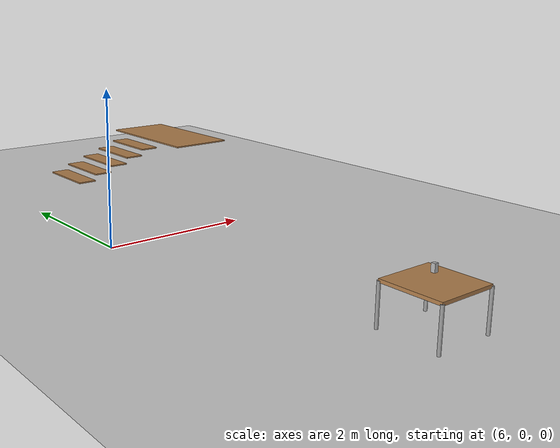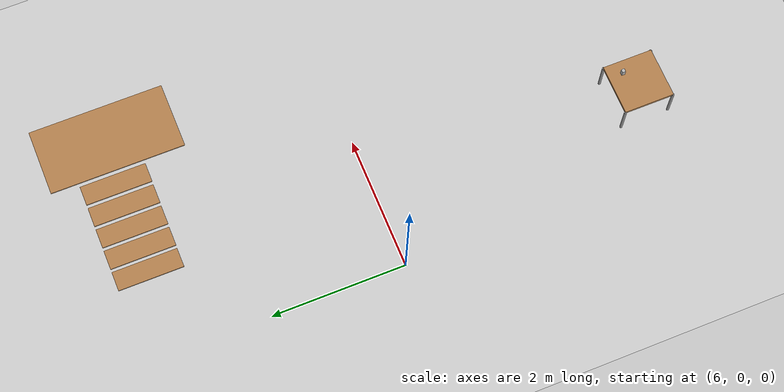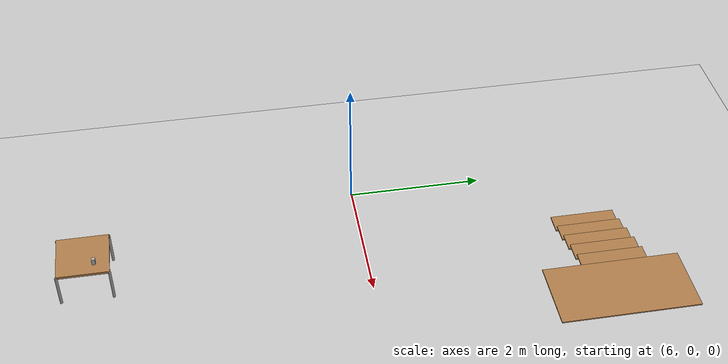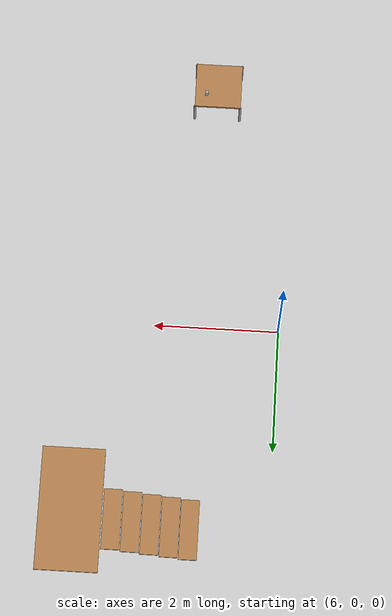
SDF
<sdf version="1.6">
 <world name="default">
  <model name="ground_plane">
   <static>1</static>
   <link name="link">
    <collision name="collision">
     <geometry><plane><normal>0 0 1</normal><size>100 100</size></plane></geometry>
     <surface>
      <contact><collide_bitmask>65535</collide_bitmask></contact>
      <friction><ode><mu>100</mu><mu2>50</mu2></ode></friction>
     </surface>
    </collision>
    <visual name="visual">
     <cast_shadows>0</cast_shadows>
     <geometry><plane><normal>0 0 1</normal><size>100 100</size></plane></geometry>
     <material>
      <script><uri>file://media/materials/scripts/gazebo.material</uri><name>Gazebo/Grey</name></script>
     </material>
    </visual>
   </link>
  </model>
  <model name="bauzil_stairs_0">
   <static>1</static>
   <link name="step_1">
    <collision name="step_1">
     <pose>2.01 -0.059996 0.59 0 -0 0</pose>
     <geometry><box><size>0.982111 1.96422 0.02</size></box></geometry>
    </collision>
    <visual name="step_1">
     <pose>2.01 -0.059996 0.59 0 -0 0</pose>
     <geometry><box><size>0.982111 1.96422 0.02</size></box></geometry>
     <material>
      <script><uri>file://media/materials/scripts/gazebo.material</uri><name>Gazebo/Wood</name></script>
     </material>
    </visual>
   </link>
   <link name="step_2">
    <collision name="step_2">
     <pose>1.36 0.040004 0.49 0 -0 0</pose>
     <geometry><box><size>0.288506 0.961687 0.02</size></box></geometry>
    </collision>
    <visual name="step_2">
     <pose>1.36 0.040004 0.49 0 -0 0</pose>
     <geometry><box><size>0.288506 0.961687 0.02</size></box></geometry>
     <material>
      <script><uri>file://media/materials/scripts/gazebo.material</uri><name>Gazebo/Wood</name></script>
     </material>
    </visual>
   </link>
   <link name="step_3">
    <collision name="step_3">
     <pose>1.06 0.040004 0.39 0 -0 0</pose>
     <geometry><box><size>0.288506 0.961687 0.02</size></box></geometry>
    </collision>
    <visual name="step_3">
     <pose>1.06 0.040004 0.39 0 -0 0</pose>
     <geometry><box><size>0.288506 0.961687 0.02</size></box></geometry>
     <material>
      <script><uri>file://media/materials/scripts/gazebo.material</uri><name>Gazebo/Wood</name></script>
     </material>
    </visual>
   </link>
   <link name="step_4">
    <collision name="step_4">
     <pose>0.76 0.040004 0.29 0 -0 0</pose>
     <geometry><box><size>0.288506 0.961687 0.02</size></box></geometry>
    </collision>
    <visual name="step_4">
     <pose>0.76 0.040004 0.29 0 -0 0</pose>
     <geometry><box><size>0.288506 0.961687 0.02</size></box></geometry>
     <material>
      <script><uri>file://media/materials/scripts/gazebo.material</uri><name>Gazebo/Wood</name></script>
     </material>
    </visual>
   </link>
   <link name="step_5">
    <collision name="step_5">
     <pose>0.46 0.040004 0.19 0 -0 0</pose>
     <geometry><box><size>0.288506 0.961687 0.02</size></box></geometry>
    </collision>
    <visual name="step_5">
     <pose>0.46 0.040004 0.19 0 -0 0</pose>
     <geometry><box><size>0.288506 0.961687 0.02</size></box></geometry>
     <material>
      <script><uri>file://media/materials/scripts/gazebo.material</uri><name>Gazebo/Wood</name></script>
     </material>
    </visual>
   </link>
   <link name="step_6">
    <collision name="step_6">
     <pose>0.16 0.040004 0.09 0 -0 0</pose>
     <geometry><box><size>0.288506 0.961687 0.02</size></box></geometry>
    </collision>
    <visual name="step_6">
     <pose>0.16 0.040004 0.09 0 -0 0</pose>
     <geometry><box><size>0.288506 0.961687 0.02</size></box></geometry>
     <material>
      <script><uri>file://media/materials/scripts/gazebo.material</uri><name>Gazebo/Wood</name></script>
     </material>
    </visual>
   </link>
   <pose>7.08932 3.31501 0 0 -0 0</pose>
  </model>
  <model name="table_clone">
   <static>1</static>
   <link name="link">
    <collision name="surface">
     <pose>0 0 0.5 0 -0 0</pose>
     <geometry><box><size>0.75 0.75 0.04</size></box></geometry>
    </collision>
    <visual name="visual1">
     <pose>0 0 0.5 0 -0 0</pose>
     <geometry><box><size>0.75 0.75 0.04</size></box></geometry>
     <material>
      <script><uri>file://media/materials/scripts/gazebo.material</uri><name>Gazebo/Wood</name></script>
     </material>
    </visual>
    <collision name="front_left_leg">
     <pose>0.37 0.37 0.25 0 -0 0</pose>
     <geometry><cylinder><radius>0.02</radius><length>0.5</length></cylinder></geometry>
    </collision>
    <visual name="front_left_leg">
     <pose>0.37 0.37 0.25 0 -0 0</pose>
     <geometry><cylinder><radius>0.02</radius><length>0.5</length></cylinder></geometry>
     <material>
      <script><uri>file://media/materials/scripts/gazebo.material</uri><name>Gazebo/Grey</name></script>
     </material>
    </visual>
    <collision name="front_right_leg">
     <pose>0.37 -0.37 0.25 0 -0 0</pose>
     <geometry><cylinder><radius>0.02</radius><length>0.5</length></cylinder></geometry>
    </collision>
    <visual name="front_right_leg">
     <pose>0.37 -0.37 0.25 0 -0 0</pose>
     <geometry><cylinder><radius>0.02</radius><length>0.5</length></cylinder></geometry>
     <material>
      <script><uri>file://media/materials/scripts/gazebo.material</uri><name>Gazebo/Grey</name></script>
     </material>
    </visual>
    <collision name="back_right_leg">
     <pose>-0.37 -0.37 0.25 0 -0 0</pose>
     <geometry><cylinder><radius>0.02</radius><length>0.5</length></cylinder></geometry>
    </collision>
    <visual name="back_right_leg">
     <pose>-0.37 -0.37 0.25 0 -0 0</pose>
     <geometry><cylinder><radius>0.02</radius><length>0.5</length></cylinder></geometry>
     <material>
      <script><uri>file://media/materials/scripts/gazebo.material</uri><name>Gazebo/Grey</name></script>
     </material>
    </visual>
    <collision name="back_left_leg">
     <pose>-0.37 0.37 0.25 0 -0 0</pose>
     <geometry><cylinder><radius>0.02</radius><length>0.5</length></cylinder></geometry>
    </collision>
    <visual name="back_left_leg">
     <pose>-0.37 0.37 0.25 0 -0 0</pose>
     <geometry><cylinder><radius>0.02</radius><length>0.5</length></cylinder></geometry>
     <material>
      <script><uri>file://media/materials/scripts/gazebo.material</uri><name>Gazebo/Grey</name></script>
     </material>
    </visual>
    <velocity_decay><linear>0</linear><angular>0</angular></velocity_decay>
   </link>
   <pose>7.16962 -4.04131 0 0 -0 0</pose>
  </model>
  <model name="aruco_cube_0">
   <static>0</static>
   <link name="link">
    <inertial>
     <mass>0.05</mass>
     <inertia>
      <ixx>5.2083e-05</ixx>
      <ixy>0</ixy>
      <ixz>0</ixz>
      <iyy>5.2083e-05</iyy>
      <iyz>0</iyz>
      <izz>2.0833e-05</izz>
     </inertia>
    </inertial>
    <collision name="colision">
     <geometry><box><size>0.05 0.05 0.1</size></box></geometry>
     <surface>
      <friction><ode><mu>30</mu><mu2>30</mu2><fdir1>0 0 0</fdir1></ode></friction>
      <contact><ode><kp>1e+06</kp><kd>100</kd><min_depth>0.0025</min_depth><max_vel>1</max_vel></ode></contact>
     </surface>
    </collision>
    <visual name="visual1">
     <geometry>
      <mesh><uri>model://aruco_cube_2/meshes/aruco_cube_5cm.dae</uri><scale>1 1 2</scale></mesh>
     </geometry>
    </visual>
    <velocity_decay><linear>0</linear><angular>0</angular></velocity_decay>
   </link>
   <pose>7.35746 -3.88171 0.568722 -0.000839 0.000228 8e-06</pose>
  </model>
 </world>
</sdf>
